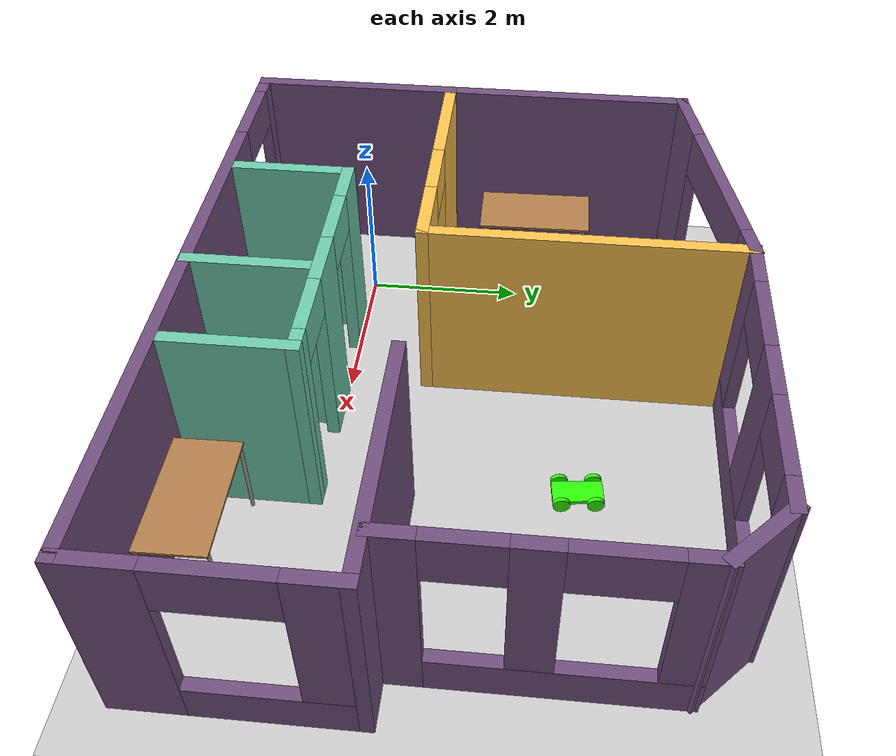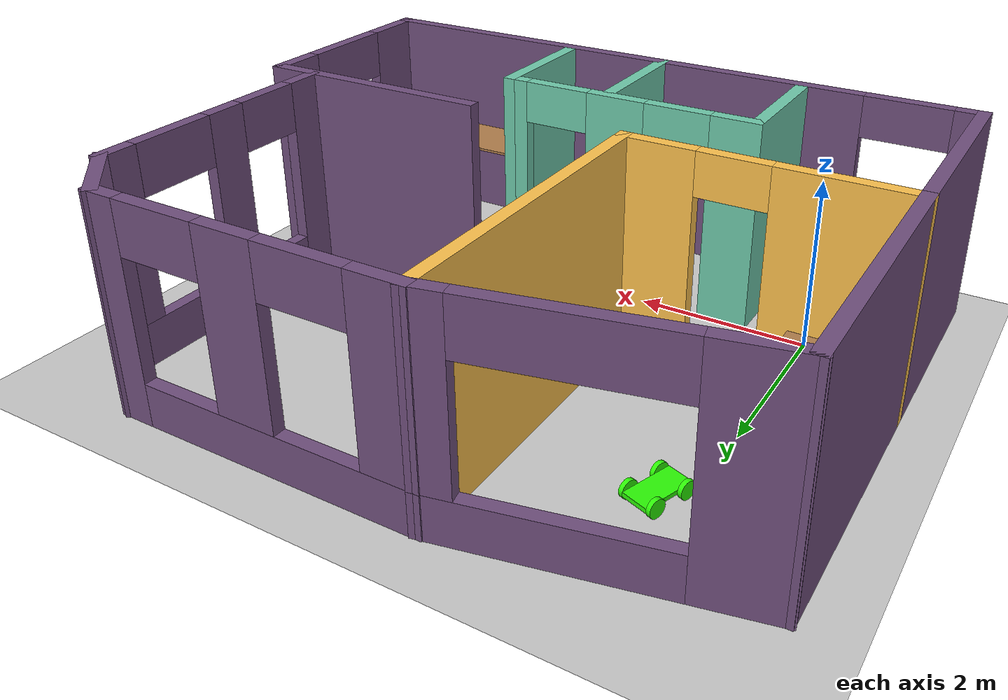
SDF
<sdf version="1.6">
 <world name="default">
  <plugin name="welcome" filename="libwelcome.so"/>
  <light name="sun" type="directional">
   <pose>0 0 10 0 -0 0</pose>
   <diffuse>0.8 0.8 0.8 1</diffuse>
   <specular>0.2 0.2 0.2 1</specular>
   <attenuation>
    <range>1000</range>
    <constant>0.9</constant>
    <linear>0.01</linear>
    <quadratic>0.001</quadratic>
   </attenuation>
   <direction>-0.5 0.1 -0.9</direction>
  </light>
  <model name="ground_plane">
   <static>1</static>
   <link name="link">
    <collision name="collision">
     <geometry><plane><normal>0 0 1</normal><size>100 100</size></plane></geometry>
     <surface>
      <contact><collide_bitmask>65535</collide_bitmask></contact>
      <friction><ode><mu>100</mu><mu2>50</mu2></ode></friction>
     </surface>
    </collision>
    <visual name="visual">
     <cast_shadows>0</cast_shadows>
     <geometry><plane><normal>0 0 1</normal><size>100 100</size></plane></geometry>
     <material>
      <script><uri>file://media/materials/scripts/gazebo.material</uri><name>Gazebo/Grey</name></script>
     </material>
    </visual>
   </link>
  </model>
  <gravity>0 0 -9.8</gravity>
  <magnetic_field>6e-06 2.3e-05 -4.2e-05</magnetic_field>
  <atmosphere type="adiabatic"/>
  <physics name="default_physics" default="0" type="ode">
   <max_step_size>0.001</max_step_size>
   <real_time_factor>1</real_time_factor>
   <real_time_update_rate>1000</real_time_update_rate>
  </physics>
  <scene><ambient>0.4 0.4 0.4 1</ambient><background>0.7 0.7 0.7 1</background><shadows>1</shadows></scene>
  <audio><device>default</device></audio>
  <spherical_coordinates>
   <surface_model>EARTH_WGS84</surface_model>
   <latitude_deg>0</latitude_deg>
   <longitude_deg>0</longitude_deg>
   <elevation>0</elevation>
   <heading_deg>0</heading_deg>
  </spherical_coordinates>
  <model name="apartment-35">
   <pose>2.67015 1.59203 0 0 -0 0</pose>
   <link name="Wall_0">
    <pose>0.006768 -3.16806 0 0 -0 0</pose>
    <visual name="Wall_0_Visual_0">
     <pose>-3.79978 0 1.25 0 -0 0</pose>
     <geometry><box><size>0.37543 0.15 2.5</size></box></geometry>
     <material>
      <script><uri>file://media/materials/scripts/gazebo.material</uri><name>Gazebo/Grey</name></script>
      <ambient>0.443137 0.313726 0.494118 1</ambient>
     </material>
     <meta><layer>0</layer></meta>
    </visual>
    <collision name="Wall_0_Collision_0">
     <geometry><box><size>0.37543 0.15 2.5</size></box></geometry>
     <pose>-3.79978 0 1.25 0 -0 0</pose>
    </collision>
    <visual name="Wall_0_Visual_1">
     <pose>0.687715 0 1.25 0 -0 0</pose>
     <geometry><box><size>6.59957 0.15 2.5</size></box></geometry>
     <material>
      <script><uri>file://media/materials/scripts/gazebo.material</uri><name>Gazebo/Grey</name></script>
      <ambient>0.443137 0.313726 0.494118 1</ambient>
     </material>
     <meta><layer>0</layer></meta>
    </visual>
    <collision name="Wall_0_Collision_1">
     <geometry><box><size>6.59957 0.15 2.5</size></box></geometry>
     <pose>0.687715 0 1.25 0 -0 0</pose>
    </collision>
    <visual name="Wall_0_Visual_2">
     <pose>-3.11207 0 2.25 0 -0 0</pose>
     <geometry><box><size>1 0.15 0.5</size></box></geometry>
     <material>
      <script><uri>file://media/materials/scripts/gazebo.material</uri><name>Gazebo/Grey</name></script>
      <ambient>0.443137 0.313726 0.494118 1</ambient>
     </material>
     <meta><layer>0</layer></meta>
    </visual>
    <collision name="Wall_0_Collision_2">
     <geometry><box><size>1 0.15 0.5</size></box></geometry>
     <pose>-3.11207 0 2.25 0 -0 0</pose>
    </collision>
   </link>
   <link name="Wall_10">
    <pose>0.994046 3.13706 0 0 -0 -3.14153</pose>
    <visual name="Wall_10_Visual_0">
     <pose>-1.66159 0 1.25 0 -0 0</pose>
     <geometry><box><size>0.426824 0.15 2.5</size></box></geometry>
     <material>
      <script><uri>file://media/materials/scripts/gazebo.material</uri><name>Gazebo/Grey</name></script>
      <ambient>0.443137 0.313726 0.494118 1</ambient>
     </material>
     <meta><layer>0</layer></meta>
    </visual>
    <collision name="Wall_10_Collision_0">
     <geometry><box><size>0.426824 0.15 2.5</size></box></geometry>
     <pose>-1.66159 0 1.25 0 -0 0</pose>
    </collision>
    <visual name="Wall_10_Visual_1">
     <pose>0.213412 0 0.25 0 -0 0</pose>
     <geometry><box><size>3.32318 0.15 0.5</size></box></geometry>
     <material>
      <script><uri>file://media/materials/scripts/gazebo.material</uri><name>Gazebo/Grey</name></script>
      <ambient>0.443137 0.313726 0.494118 1</ambient>
     </material>
     <meta><layer>0</layer></meta>
    </visual>
    <collision name="Wall_10_Collision_1">
     <geometry><box><size>3.32318 0.15 0.5</size></box></geometry>
     <pose>0.213412 0 0.25 0 -0 0</pose>
    </collision>
    <visual name="Wall_10_Visual_2">
     <pose>-0.103407 0 1.5 0 -0 0</pose>
     <geometry><box><size>0.689537 0.15 2</size></box></geometry>
     <material>
      <script><uri>file://media/materials/scripts/gazebo.material</uri><name>Gazebo/Grey</name></script>
      <ambient>0.443137 0.313726 0.494118 1</ambient>
     </material>
     <meta><layer>0</layer></meta>
    </visual>
    <collision name="Wall_10_Collision_2">
     <geometry><box><size>0.689537 0.15 2</size></box></geometry>
     <pose>-0.103407 0 1.5 0 -0 0</pose>
    </collision>
    <visual name="Wall_10_Visual_3">
     <pose>1.55818 0 1.5 0 -0 0</pose>
     <geometry><box><size>0.633638 0.15 2</size></box></geometry>
     <material>
      <script><uri>file://media/materials/scripts/gazebo.material</uri><name>Gazebo/Grey</name></script>
      <ambient>0.443137 0.313726 0.494118 1</ambient>
     </material>
     <meta><layer>0</layer></meta>
    </visual>
    <collision name="Wall_10_Collision_3">
     <geometry><box><size>0.633638 0.15 2</size></box></geometry>
     <pose>1.55818 0 1.5 0 -0 0</pose>
    </collision>
    <visual name="Wall_10_Visual_4">
     <pose>-0.948176 0 2.2 0 -0 0</pose>
     <geometry><box><size>1 0.15 0.6</size></box></geometry>
     <material>
      <script><uri>file://media/materials/scripts/gazebo.material</uri><name>Gazebo/Grey</name></script>
      <ambient>0.443137 0.313726 0.494118 1</ambient>
     </material>
     <meta><layer>0</layer></meta>
    </visual>
    <collision name="Wall_10_Collision_4">
     <geometry><box><size>1 0.15 0.6</size></box></geometry>
     <pose>-0.948176 0 2.2 0 -0 0</pose>
    </collision>
    <visual name="Wall_10_Visual_5">
     <pose>0.741362 0 2.2 0 -0 0</pose>
     <geometry><box><size>1 0.15 0.6</size></box></geometry>
     <material>
      <script><uri>file://media/materials/scripts/gazebo.material</uri><name>Gazebo/Grey</name></script>
      <ambient>0.443137 0.313726 0.494118 1</ambient>
     </material>
     <meta><layer>0</layer></meta>
    </visual>
    <collision name="Wall_10_Collision_5">
     <geometry><box><size>1 0.15 0.6</size></box></geometry>
     <pose>0.741362 0 2.2 0 -0 0</pose>
    </collision>
   </link>
   <link name="Wall_11">
    <collision name="Wall_11_Collision">
     <geometry><box><size>3.901 0.15 2.5</size></box></geometry>
     <pose>0 0 1.25 0 -0 0</pose>
    </collision>
    <visual name="Wall_11_Visual">
     <pose>0 0 1.25 0 -0 0</pose>
     <geometry><box><size>3.901 0.15 2.5</size></box></geometry>
     <material>
      <script><uri>file://media/materials/scripts/gazebo.material</uri><name>Gazebo/Grey</name></script>
      <ambient>1 0.764706 0.305882 1</ambient>
     </material>
     <meta><layer>0</layer></meta>
    </visual>
    <pose>-0.805732 1.26144 0 0 -0 -1.5708</pose>
   </link>
   <link name="Wall_13">
    <pose>-2.35573 -0.61406 0 0 -0 3.14159</pose>
    <visual name="Wall_13_Visual_0">
     <pose>-1.16875 0 1.25 0 -0 0</pose>
     <geometry><box><size>0.912507 0.15 2.5</size></box></geometry>
     <material>
      <script><uri>file://media/materials/scripts/gazebo.material</uri><name>Gazebo/Grey</name></script>
      <ambient>1 0.764706 0.305882 1</ambient>
     </material>
     <meta><layer>0</layer></meta>
    </visual>
    <collision name="Wall_13_Collision_0">
     <geometry><box><size>0.912507 0.15 2.5</size></box></geometry>
     <pose>-1.16875 0 1.25 0 -0 0</pose>
    </collision>
    <visual name="Wall_13_Visual_1">
     <pose>0.856253 0 1.25 0 -0 0</pose>
     <geometry><box><size>1.53749 0.15 2.5</size></box></geometry>
     <material>
      <script><uri>file://media/materials/scripts/gazebo.material</uri><name>Gazebo/Grey</name></script>
      <ambient>1 0.764706 0.305882 1</ambient>
     </material>
     <meta><layer>0</layer></meta>
    </visual>
    <collision name="Wall_13_Collision_1">
     <geometry><box><size>1.53749 0.15 2.5</size></box></geometry>
     <pose>0.856253 0 1.25 0 -0 0</pose>
    </collision>
    <visual name="Wall_13_Visual_2">
     <pose>-0.312493 0 2.25 0 -0 0</pose>
     <geometry><box><size>0.8 0.15 0.5</size></box></geometry>
     <material>
      <script><uri>file://media/materials/scripts/gazebo.material</uri><name>Gazebo/Grey</name></script>
      <ambient>1 0.764706 0.305882 1</ambient>
     </material>
     <meta><layer>0</layer></meta>
    </visual>
    <collision name="Wall_13_Collision_2">
     <geometry><box><size>0.8 0.15 0.5</size></box></geometry>
     <pose>-0.312493 0 2.25 0 -0 0</pose>
    </collision>
   </link>
   <link name="Wall_15">
    <collision name="Wall_15_Collision">
     <geometry><box><size>2.70438 0.15 2.5</size></box></geometry>
     <pose>0 0 1.25 0 -0 0</pose>
    </collision>
    <visual name="Wall_15_Visual">
     <pose>0 0 1.25 0 -0 0</pose>
     <geometry><box><size>2.70438 0.15 2.5</size></box></geometry>
     <material>
      <script><uri>file://media/materials/scripts/gazebo.material</uri><name>Gazebo/Grey</name></script>
      <ambient>0.443137 0.313726 0.494118 1</ambient>
     </material>
     <meta><layer>0</layer></meta>
    </visual>
    <pose>-3.90573 -1.89106 0 0 -0 -1.5708</pose>
   </link>
   <link name="Wall_17">
    <collision name="Wall_17_Collision">
     <geometry><box><size>3.25 0.15 2.5</size></box></geometry>
     <pose>0 0 1.25 0 -0 0</pose>
    </collision>
    <visual name="Wall_17_Visual">
     <pose>0 0 1.25 0 -0 0</pose>
     <geometry><box><size>3.25 0.15 2.5</size></box></geometry>
     <material>
      <script><uri>file://media/materials/scripts/gazebo.material</uri><name>Gazebo/Grey</name></script>
      <ambient>0.443137 0.313726 0.494118 1</ambient>
     </material>
     <meta><layer>0</layer></meta>
    </visual>
    <pose>-3.90573 0.93594 0 0 -0 1.5708</pose>
   </link>
   <link name="Wall_18">
    <pose>-2.35573 2.81144 0 0 -0 0.206992</pose>
    <visual name="Wall_18_Visual_0">
     <pose>-1.2169 0 1.25 0 -0 0</pose>
     <geometry><box><size>0.883821 0.15 2.5</size></box></geometry>
     <material>
      <script><uri>file://media/materials/scripts/gazebo.material</uri><name>Gazebo/Grey</name></script>
      <ambient>0.443137 0.313726 0.494118 1</ambient>
     </material>
     <meta><layer>0</layer></meta>
    </visual>
    <collision name="Wall_18_Collision_0">
     <geometry><box><size>0.883821 0.15 2.5</size></box></geometry>
     <pose>-1.2169 0 1.25 0 -0 0</pose>
    </collision>
    <visual name="Wall_18_Visual_1">
     <pose>0.441911 0 0.25 0 -0 0</pose>
     <geometry><box><size>2.4338 0.15 0.5</size></box></geometry>
     <material>
      <script><uri>file://media/materials/scripts/gazebo.material</uri><name>Gazebo/Grey</name></script>
      <ambient>0.443137 0.313726 0.494118 1</ambient>
     </material>
     <meta><layer>0</layer></meta>
    </visual>
    <collision name="Wall_18_Collision_1">
     <geometry><box><size>2.4338 0.15 0.5</size></box></geometry>
     <pose>0.441911 0 0.25 0 -0 0</pose>
    </collision>
    <visual name="Wall_18_Visual_2">
     <pose>1.44191 0 1.5 0 -0 0</pose>
     <geometry><box><size>0.433796 0.15 2</size></box></geometry>
     <material>
      <script><uri>file://media/materials/scripts/gazebo.material</uri><name>Gazebo/Grey</name></script>
      <ambient>0.443137 0.313726 0.494118 1</ambient>
     </material>
     <meta><layer>0</layer></meta>
    </visual>
    <collision name="Wall_18_Collision_2">
     <geometry><box><size>0.433796 0.15 2</size></box></geometry>
     <pose>1.44191 0 1.5 0 -0 0</pose>
    </collision>
    <visual name="Wall_18_Visual_3">
     <pose>0.225013 0 2.2 0 -0 0</pose>
     <geometry><box><size>2 0.15 0.6</size></box></geometry>
     <material>
      <script><uri>file://media/materials/scripts/gazebo.material</uri><name>Gazebo/Grey</name></script>
      <ambient>0.443137 0.313726 0.494118 1</ambient>
     </material>
     <meta><layer>0</layer></meta>
    </visual>
    <collision name="Wall_18_Collision_3">
     <geometry><box><size>2 0.15 0.6</size></box></geometry>
     <pose>0.225013 0 2.2 0 -0 0</pose>
    </collision>
   </link>
   <link name="Wall_20">
    <collision name="Wall_20_Collision">
     <geometry><box><size>1.5 0.15 2.5</size></box></geometry>
     <pose>0 0 1.25 0 -0 0</pose>
    </collision>
    <visual name="Wall_20_Visual">
     <pose>0 0 1.25 0 -0 0</pose>
     <geometry><box><size>1.5 0.15 2.5</size></box></geometry>
     <material>
      <script><uri>file://media/materials/scripts/gazebo.material</uri><name>Gazebo/Grey</name></script>
      <ambient>0.435294 0.796078 0.67451 1</ambient>
     </material>
     <meta><layer>0</layer></meta>
    </visual>
    <pose>1.21959 -2.34338 0 0 -0 -1.5708</pose>
   </link>
   <link name="Wall_22">
    <pose>-0.330406 -1.66838 0 0 -0 3.14159</pose>
    <visual name="Wall_22_Visual_0">
     <pose>-1.46347 0 1.25 0 -0 0</pose>
     <geometry><box><size>0.323069 0.15 2.5</size></box></geometry>
     <material>
      <script><uri>file://media/materials/scripts/gazebo.material</uri><name>Gazebo/Grey</name></script>
      <ambient>0.435294 0.796078 0.67451 1</ambient>
     </material>
     <meta><layer>0</layer></meta>
    </visual>
    <collision name="Wall_22_Collision_0">
     <geometry><box><size>0.323069 0.15 2.5</size></box></geometry>
     <pose>-1.46347 0 1.25 0 -0 0</pose>
    </collision>
    <visual name="Wall_22_Visual_1">
     <pose>-0.137615 0 1.25 0 -0 0</pose>
     <geometry><box><size>0.728631 0.15 2.5</size></box></geometry>
     <material>
      <script><uri>file://media/materials/scripts/gazebo.material</uri><name>Gazebo/Grey</name></script>
      <ambient>0.435294 0.796078 0.67451 1</ambient>
     </material>
     <meta><layer>0</layer></meta>
    </visual>
    <collision name="Wall_22_Collision_1">
     <geometry><box><size>0.728631 0.15 2.5</size></box></geometry>
     <pose>-0.137615 0 1.25 0 -0 0</pose>
    </collision>
    <visual name="Wall_22_Visual_2">
     <pose>1.32585 0 1.25 0 -0 0</pose>
     <geometry><box><size>0.5983 0.15 2.5</size></box></geometry>
     <material>
      <script><uri>file://media/materials/scripts/gazebo.material</uri><name>Gazebo/Grey</name></script>
      <ambient>0.435294 0.796078 0.67451 1</ambient>
     </material>
     <meta><layer>0</layer></meta>
    </visual>
    <collision name="Wall_22_Collision_2">
     <geometry><box><size>0.5983 0.15 2.5</size></box></geometry>
     <pose>1.32585 0 1.25 0 -0 0</pose>
    </collision>
    <visual name="Wall_22_Visual_3">
     <pose>-0.901931 0 2.25 0 -0 0</pose>
     <geometry><box><size>0.8 0.15 0.5</size></box></geometry>
     <material>
      <script><uri>file://media/materials/scripts/gazebo.material</uri><name>Gazebo/Grey</name></script>
      <ambient>0.435294 0.796078 0.67451 1</ambient>
     </material>
     <meta><layer>0</layer></meta>
    </visual>
    <collision name="Wall_22_Collision_3">
     <geometry><box><size>0.8 0.15 0.5</size></box></geometry>
     <pose>-0.901931 0 2.25 0 -0 0</pose>
    </collision>
    <visual name="Wall_22_Visual_4">
     <pose>0.6267 0 2.25 0 -0 0</pose>
     <geometry><box><size>0.8 0.15 0.5</size></box></geometry>
     <material>
      <script><uri>file://media/materials/scripts/gazebo.material</uri><name>Gazebo/Grey</name></script>
      <ambient>0.435294 0.796078 0.67451 1</ambient>
     </material>
     <meta><layer>0</layer></meta>
    </visual>
    <collision name="Wall_22_Collision_4">
     <geometry><box><size>0.8 0.15 0.5</size></box></geometry>
     <pose>0.6267 0 2.25 0 -0 0</pose>
    </collision>
   </link>
   <link name="Wall_23">
    <collision name="Wall_23_Collision">
     <geometry><box><size>1.5 0.15 2.5</size></box></geometry>
     <pose>0 0 1.25 0 -0 0</pose>
    </collision>
    <visual name="Wall_23_Visual">
     <pose>0 0 1.25 0 -0 0</pose>
     <geometry><box><size>1.5 0.15 2.5</size></box></geometry>
     <material>
      <script><uri>file://media/materials/scripts/gazebo.material</uri><name>Gazebo/Grey</name></script>
      <ambient>0.435294 0.796078 0.67451 1</ambient>
     </material>
     <meta><layer>0</layer></meta>
    </visual>
    <pose>-1.88041 -2.34338 0 0 -0 -1.5708</pose>
   </link>
   <link name="Wall_27">
    <collision name="Wall_27_Collision">
     <geometry><box><size>1.5 0.15 2.5</size></box></geometry>
     <pose>0 0 1.25 0 -0 0</pose>
    </collision>
    <visual name="Wall_27_Visual">
     <pose>0 0 1.25 0 -0 0</pose>
     <geometry><box><size>1.5 0.15 2.5</size></box></geometry>
     <material>
      <script><uri>file://media/materials/scripts/gazebo.material</uri><name>Gazebo/Grey</name></script>
      <ambient>0.435294 0.796078 0.67451 1</ambient>
     </material>
     <meta><layer>0</layer></meta>
    </visual>
    <pose>-0.051995 -2.47975 0 0 -0 1.5708</pose>
   </link>
   <link name="Wall_3">
    <pose>3.91927 -1.89106 0 0 -0 1.5708</pose>
    <visual name="Wall_3_Visual_0">
     <pose>-0.932156 0 1.25 0 -0 0</pose>
     <geometry><box><size>0.839473 0.15 2.5</size></box></geometry>
     <material>
      <script><uri>file://media/materials/scripts/gazebo.material</uri><name>Gazebo/Grey</name></script>
      <ambient>0.443137 0.313726 0.494118 1</ambient>
     </material>
     <meta><layer>0</layer></meta>
    </visual>
    <collision name="Wall_3_Collision_0">
     <geometry><box><size>0.839473 0.15 2.5</size></box></geometry>
     <pose>-0.932156 0 1.25 0 -0 0</pose>
    </collision>
    <visual name="Wall_3_Visual_1">
     <pose>0.419736 0 0.25 0 -0 0</pose>
     <geometry><box><size>1.86431 0.15 0.5</size></box></geometry>
     <material>
      <script><uri>file://media/materials/scripts/gazebo.material</uri><name>Gazebo/Grey</name></script>
      <ambient>0.443137 0.313726 0.494118 1</ambient>
     </material>
     <meta><layer>0</layer></meta>
    </visual>
    <collision name="Wall_3_Collision_1">
     <geometry><box><size>1.86431 0.15 0.5</size></box></geometry>
     <pose>0.419736 0 0.25 0 -0 0</pose>
    </collision>
    <visual name="Wall_3_Visual_2">
     <pose>1.01974 0 1.5 0 -0 0</pose>
     <geometry><box><size>0.664312 0.15 2</size></box></geometry>
     <material>
      <script><uri>file://media/materials/scripts/gazebo.material</uri><name>Gazebo/Grey</name></script>
      <ambient>0.443137 0.313726 0.494118 1</ambient>
     </material>
     <meta><layer>0</layer></meta>
    </visual>
    <collision name="Wall_3_Collision_2">
     <geometry><box><size>0.664312 0.15 2</size></box></geometry>
     <pose>1.01974 0 1.5 0 -0 0</pose>
    </collision>
    <visual name="Wall_3_Visual_3">
     <pose>0.087581 0 2.2 0 -0 0</pose>
     <geometry><box><size>1.2 0.15 0.6</size></box></geometry>
     <material>
      <script><uri>file://media/materials/scripts/gazebo.material</uri><name>Gazebo/Grey</name></script>
      <ambient>0.443137 0.313726 0.494118 1</ambient>
     </material>
     <meta><layer>0</layer></meta>
    </visual>
    <collision name="Wall_3_Collision_3">
     <geometry><box><size>1.2 0.15 0.6</size></box></geometry>
     <pose>0.087581 0 2.2 0 -0 0</pose>
    </collision>
   </link>
   <link name="Wall_4">
    <collision name="Wall_4_Collision">
     <geometry><box><size>2.93855 0.15 2.5</size></box></geometry>
     <pose>0 0 1.25 0 -0 0</pose>
    </collision>
    <visual name="Wall_4_Visual">
     <pose>0 0 1.25 0 -0 0</pose>
     <geometry><box><size>2.93855 0.15 2.5</size></box></geometry>
     <material>
      <script><uri>file://media/materials/scripts/gazebo.material</uri><name>Gazebo/Grey</name></script>
      <ambient>0.443137 0.313726 0.494118 1</ambient>
     </material>
     <meta><layer>0</layer></meta>
    </visual>
    <pose>2.52527 -0.61406 0 0 -0 3.14159</pose>
   </link>
   <link name="Wall_7">
    <pose>3.39486 0.986143 0 0 -0 1.5708</pose>
    <visual name="Wall_7_Visual_0">
     <pose>-1.37146 0 1.25 0 -0 0</pose>
     <geometry><box><size>0.507076 0.15 2.5</size></box></geometry>
     <material>
      <script><uri>file://media/materials/scripts/gazebo.material</uri><name>Gazebo/Grey</name></script>
      <ambient>0.443137 0.313726 0.494118 1</ambient>
     </material>
     <meta><layer>0</layer></meta>
    </visual>
    <collision name="Wall_7_Collision_0">
     <geometry><box><size>0.507076 0.15 2.5</size></box></geometry>
     <pose>-1.37146 0 1.25 0 -0 0</pose>
    </collision>
    <visual name="Wall_7_Visual_1">
     <pose>0.253538 0 0.25 0 -0 0</pose>
     <geometry><box><size>2.74292 0.15 0.5</size></box></geometry>
     <material>
      <script><uri>file://media/materials/scripts/gazebo.material</uri><name>Gazebo/Grey</name></script>
      <ambient>0.443137 0.313726 0.494118 1</ambient>
     </material>
     <meta><layer>0</layer></meta>
    </visual>
    <collision name="Wall_7_Collision_1">
     <geometry><box><size>2.74292 0.15 0.5</size></box></geometry>
     <pose>0.253538 0 0.25 0 -0 0</pose>
    </collision>
    <visual name="Wall_7_Visual_2">
     <pose>-0.074006 0 1.5 0 -0 0</pose>
     <geometry><box><size>0.487836 0.15 2</size></box></geometry>
     <material>
      <script><uri>file://media/materials/scripts/gazebo.material</uri><name>Gazebo/Grey</name></script>
      <ambient>0.443137 0.313726 0.494118 1</ambient>
     </material>
     <meta><layer>0</layer></meta>
    </visual>
    <collision name="Wall_7_Collision_2">
     <geometry><box><size>0.487836 0.15 2</size></box></geometry>
     <pose>-0.074006 0 1.5 0 -0 0</pose>
    </collision>
    <visual name="Wall_7_Visual_3">
     <pose>1.39746 0 1.5 0 -0 0</pose>
     <geometry><box><size>0.455088 0.15 2</size></box></geometry>
     <material>
      <script><uri>file://media/materials/scripts/gazebo.material</uri><name>Gazebo/Grey</name></script>
      <ambient>0.443137 0.313726 0.494118 1</ambient>
     </material>
     <meta><layer>0</layer></meta>
    </visual>
    <collision name="Wall_7_Collision_3">
     <geometry><box><size>0.455088 0.15 2</size></box></geometry>
     <pose>1.39746 0 1.5 0 -0 0</pose>
    </collision>
    <visual name="Wall_7_Visual_4">
     <pose>-0.717924 0 2.2 0 -0 0</pose>
     <geometry><box><size>0.8 0.15 0.6</size></box></geometry>
     <material>
      <script><uri>file://media/materials/scripts/gazebo.material</uri><name>Gazebo/Grey</name></script>
      <ambient>0.443137 0.313726 0.494118 1</ambient>
     </material>
     <meta><layer>0</layer></meta>
    </visual>
    <collision name="Wall_7_Collision_4">
     <geometry><box><size>0.8 0.15 0.6</size></box></geometry>
     <pose>-0.717924 0 2.2 0 -0 0</pose>
    </collision>
    <visual name="Wall_7_Visual_5">
     <pose>0.669912 0 2.2 0 -0 0</pose>
     <geometry><box><size>1 0.15 0.6</size></box></geometry>
     <material>
      <script><uri>file://media/materials/scripts/gazebo.material</uri><name>Gazebo/Grey</name></script>
      <ambient>0.443137 0.313726 0.494118 1</ambient>
     </material>
     <meta><layer>0</layer></meta>
    </visual>
    <collision name="Wall_7_Collision_5">
     <geometry><box><size>1 0.15 0.6</size></box></geometry>
     <pose>0.669912 0 2.2 0 -0 0</pose>
    </collision>
   </link>
   <link name="Wall_8">
    <collision name="Wall_8_Collision">
     <geometry><box><size>1 0.15 2.5</size></box></geometry>
     <pose>0 0 1.25 0 -0 0</pose>
    </collision>
    <visual name="Wall_8_Visual">
     <pose>0 0 1.25 0 -0 0</pose>
     <geometry><box><size>1 0.15 2.5</size></box></geometry>
     <material>
      <script><uri>file://media/materials/scripts/gazebo.material</uri><name>Gazebo/Grey</name></script>
      <ambient>0.443137 0.313726 0.494118 1</ambient>
     </material>
     <meta><layer>0</layer></meta>
    </visual>
    <pose>3.09434 2.83666 0 0 -0 2.35619</pose>
   </link>
   <static>1</static>
  </model>
  <model name="table">
   <static>1</static>
   <link name="link">
    <collision name="surface">
     <pose>0 0 1 0 -0 0</pose>
     <geometry><box><size>1.5 0.8 0.03</size></box></geometry>
     <surface><friction><ode><mu>0.6</mu><mu2>0.6</mu2></ode></friction></surface>
    </collision>
    <visual name="visual1">
     <pose>0 0 1 0 -0 0</pose>
     <geometry><box><size>1.5 0.8 0.03</size></box></geometry>
     <material>
      <script><uri>file://media/materials/scripts/gazebo.material</uri><name>Gazebo/Wood</name></script>
     </material>
    </visual>
    <collision name="front_left_leg">
     <pose>0.68 0.38 0.5 0 -0 0</pose>
     <geometry><cylinder><radius>0.02</radius><length>1</length></cylinder></geometry>
    </collision>
    <visual name="front_left_leg">
     <pose>0.68 0.38 0.5 0 -0 0</pose>
     <geometry><cylinder><radius>0.02</radius><length>1</length></cylinder></geometry>
     <material>
      <script><uri>file://media/materials/scripts/gazebo.material</uri><name>Gazebo/Grey</name></script>
     </material>
    </visual>
    <collision name="front_right_leg">
     <pose>0.68 -0.38 0.5 0 -0 0</pose>
     <geometry><cylinder><radius>0.02</radius><length>1</length></cylinder></geometry>
    </collision>
    <visual name="front_right_leg">
     <pose>0.68 -0.38 0.5 0 -0 0</pose>
     <geometry><cylinder><radius>0.02</radius><length>1</length></cylinder></geometry>
     <material>
      <script><uri>file://media/materials/scripts/gazebo.material</uri><name>Gazebo/Grey</name></script>
     </material>
    </visual>
    <collision name="back_right_leg">
     <pose>-0.68 -0.38 0.5 0 -0 0</pose>
     <geometry><cylinder><radius>0.02</radius><length>1</length></cylinder></geometry>
    </collision>
    <visual name="back_right_leg">
     <pose>-0.68 -0.38 0.5 0 -0 0</pose>
     <geometry><cylinder><radius>0.02</radius><length>1</length></cylinder></geometry>
     <material>
      <script><uri>file://media/materials/scripts/gazebo.material</uri><name>Gazebo/Grey</name></script>
     </material>
    </visual>
    <collision name="back_left_leg">
     <pose>-0.68 0.38 0.5 0 -0 0</pose>
     <geometry><cylinder><radius>0.02</radius><length>1</length></cylinder></geometry>
    </collision>
    <visual name="back_left_leg">
     <pose>-0.68 0.38 0.5 0 -0 0</pose>
     <geometry><cylinder><radius>0.02</radius><length>1</length></cylinder></geometry>
     <material>
      <script><uri>file://media/materials/scripts/gazebo.material</uri><name>Gazebo/Grey</name></script>
     </material>
    </visual>
   </link>
   <pose>4.86246 -1.11866 0.175263 0 -0 0.012836</pose>
  </model>
  <model name="table_0">
   <static>1</static>
   <link name="link">
    <collision name="surface">
     <pose>0 0 1 0 -0 0</pose>
     <geometry><box><size>1.5 0.8 0.03</size></box></geometry>
     <surface><friction><ode><mu>0.6</mu><mu2>0.6</mu2></ode></friction></surface>
    </collision>
    <visual name="visual1">
     <pose>0 0 1 0 -0 0</pose>
     <geometry><box><size>1.5 0.8 0.03</size></box></geometry>
     <material>
      <script><uri>file://media/materials/scripts/gazebo.material</uri><name>Gazebo/Wood</name></script>
     </material>
    </visual>
    <collision name="front_left_leg">
     <pose>0.68 0.38 0.5 0 -0 0</pose>
     <geometry><cylinder><radius>0.02</radius><length>1</length></cylinder></geometry>
    </collision>
    <visual name="front_left_leg">
     <pose>0.68 0.38 0.5 0 -0 0</pose>
     <geometry><cylinder><radius>0.02</radius><length>1</length></cylinder></geometry>
     <material>
      <script><uri>file://media/materials/scripts/gazebo.material</uri><name>Gazebo/Grey</name></script>
     </material>
    </visual>
    <collision name="front_right_leg">
     <pose>0.68 -0.38 0.5 0 -0 0</pose>
     <geometry><cylinder><radius>0.02</radius><length>1</length></cylinder></geometry>
    </collision>
    <visual name="front_right_leg">
     <pose>0.68 -0.38 0.5 0 -0 0</pose>
     <geometry><cylinder><radius>0.02</radius><length>1</length></cylinder></geometry>
     <material>
      <script><uri>file://media/materials/scripts/gazebo.material</uri><name>Gazebo/Grey</name></script>
     </material>
    </visual>
    <collision name="back_right_leg">
     <pose>-0.68 -0.38 0.5 0 -0 0</pose>
     <geometry><cylinder><radius>0.02</radius><length>1</length></cylinder></geometry>
    </collision>
    <visual name="back_right_leg">
     <pose>-0.68 -0.38 0.5 0 -0 0</pose>
     <geometry><cylinder><radius>0.02</radius><length>1</length></cylinder></geometry>
     <material>
      <script><uri>file://media/materials/scripts/gazebo.material</uri><name>Gazebo/Grey</name></script>
     </material>
    </visual>
    <collision name="back_left_leg">
     <pose>-0.68 0.38 0.5 0 -0 0</pose>
     <geometry><cylinder><radius>0.02</radius><length>1</length></cylinder></geometry>
    </collision>
    <visual name="back_left_leg">
     <pose>-0.68 0.38 0.5 0 -0 0</pose>
     <geometry><cylinder><radius>0.02</radius><length>1</length></cylinder></geometry>
     <material>
      <script><uri>file://media/materials/scripts/gazebo.material</uri><name>Gazebo/Grey</name></script>
     </material>
    </visual>
   </link>
   <pose>-0.628702 2.21474 0 0 -0 1.58671</pose>
  </model>
  <model name="car">
   <link name="link_2">
    <inertial>
     <mass>1</mass>
     <inertia>
      <ixx>0.166667</ixx>
      <ixy>0</ixy>
      <ixz>0</ixz>
      <iyy>0.166667</iyy>
      <iyz>0</iyz>
      <izz>0.166667</izz>
     </inertia>
    </inertial>
    <pose>-0 -2e-06 -0 0 -0 0</pose>
    <visual name="visual">
     <geometry><box><size>0.3 0.6 0.05</size></box></geometry>
     <material>
      <lighting>1</lighting>
      <script><uri>file://media/materials/scripts/gazebo.material</uri><name>Gazebo/Grey</name></script>
      <shader type="pixel"><normal_map>__default__</normal_map></shader>
      <ambient>0.179 1 0.024 1</ambient>
      <diffuse>0.7 0.7 0.7 1</diffuse>
      <specular>0.01 0.01 0.01 1</specular>
      <emissive>0 0 0 1</emissive>
     </material>
    </visual>
    <collision name="collision">
     <geometry><box><size>0.3 0.6 0.05</size></box></geometry>
     <surface>
      <friction>
       <ode><mu>1</mu><mu2>1</mu2><fdir1>0 0 0</fdir1><slip1>0</slip1><slip2>0</slip2></ode>
       <torsional>
        <coefficient>1</coefficient>
        <patch_radius>0</patch_radius>
        <surface_radius>0</surface_radius>
        <use_patch_radius>1</use_patch_radius>
        <ode><slip>0</slip></ode>
       </torsional>
      </friction>
      <bounce><restitution_coefficient>0</restitution_coefficient><threshold>1e+06</threshold></bounce>
      <contact>
       <collide_without_contact>0</collide_without_contact>
       <collide_without_contact_bitmask>1</collide_without_contact_bitmask>
       <collide_bitmask>1</collide_bitmask>
       <ode>
        <soft_cfm>0</soft_cfm>
        <soft_erp>0.2</soft_erp>
        <kp>1e+13</kp>
        <kd>1</kd>
        <max_vel>0.01</max_vel>
        <min_depth>0</min_depth>
       </ode>
       <bullet>
        <split_impulse>1</split_impulse>
        <split_impulse_penetration_threshold>-0.01</split_impulse_penetration_threshold>
        <soft_cfm>0</soft_cfm>
        <soft_erp>0.2</soft_erp>
        <kp>1e+13</kp>
        <kd>1</kd>
       </bullet>
      </contact>
     </surface>
    </collision>
   </link>
   <link name="link_3">
    <inertial>
     <mass>1</mass>
     <inertia><ixx>0.145833</ixx><ixy>0</ixy><ixz>0</ixz><iyy>0.145833</iyy><iyz>0</iyz><izz>0.125</izz></inertia>
    </inertial>
    <pose>0.175023 -0.199988 0 1.5707 0 1.5707</pose>
    <visual name="visual">
     <geometry><cylinder><radius>0.1</radius><length>0.05</length></cylinder></geometry>
     <material>
      <lighting>1</lighting>
      <script><uri>file://media/materials/scripts/gazebo.material</uri><name>Gazebo/Grey</name></script>
      <shader type="pixel"><normal_map>__default__</normal_map></shader>
      <ambient>0.179 1 0.024 1</ambient>
      <diffuse>0.7 0.7 0.7 1</diffuse>
      <specular>0.01 0.01 0.01 1</specular>
      <emissive>0 0 0 1</emissive>
     </material>
    </visual>
    <collision name="collision">
     <geometry><cylinder><radius>0.1</radius><length>0.05</length></cylinder></geometry>
     <surface>
      <friction>
       <ode><mu>1</mu><mu2>1</mu2><fdir1>0 0 0</fdir1><slip1>0</slip1><slip2>0</slip2></ode>
       <torsional>
        <coefficient>1</coefficient>
        <patch_radius>0</patch_radius>
        <surface_radius>0</surface_radius>
        <use_patch_radius>1</use_patch_radius>
        <ode><slip>0</slip></ode>
       </torsional>
      </friction>
      <bounce><restitution_coefficient>0</restitution_coefficient><threshold>1e+06</threshold></bounce>
      <contact>
       <collide_without_contact>0</collide_without_contact>
       <collide_without_contact_bitmask>1</collide_without_contact_bitmask>
       <collide_bitmask>1</collide_bitmask>
       <ode>
        <soft_cfm>0</soft_cfm>
        <soft_erp>0.2</soft_erp>
        <kp>1e+13</kp>
        <kd>1</kd>
        <max_vel>0.01</max_vel>
        <min_depth>0</min_depth>
       </ode>
       <bullet>
        <split_impulse>1</split_impulse>
        <split_impulse_penetration_threshold>-0.01</split_impulse_penetration_threshold>
        <soft_cfm>0</soft_cfm>
        <soft_erp>0.2</soft_erp>
        <kp>1e+13</kp>
        <kd>1</kd>
       </bullet>
      </contact>
     </surface>
    </collision>
   </link>
   <link name="link_3_clone">
    <inertial>
     <mass>1</mass>
     <inertia><ixx>0.145833</ixx><ixy>0</ixy><ixz>0</ixz><iyy>0.145833</iyy><iyz>0</iyz><izz>0.125</izz></inertia>
    </inertial>
    <pose>0.17502 0.199998 0 1.5707 0 1.5707</pose>
    <visual name="visual">
     <geometry><cylinder><radius>0.1</radius><length>0.05</length></cylinder></geometry>
     <material>
      <lighting>1</lighting>
      <script><uri>file://media/materials/scripts/gazebo.material</uri><name>Gazebo/Grey</name></script>
      <shader type="pixel"><normal_map>__default__</normal_map></shader>
      <ambient>0.179 1 0.024 1</ambient>
      <diffuse>0.7 0.7 0.7 1</diffuse>
      <specular>0.01 0.01 0.01 1</specular>
      <emissive>0 0 0 1</emissive>
     </material>
    </visual>
    <collision name="collision">
     <geometry><cylinder><radius>0.1</radius><length>0.05</length></cylinder></geometry>
     <surface>
      <friction>
       <ode><mu>1</mu><mu2>1</mu2><fdir1>0 0 0</fdir1><slip1>0</slip1><slip2>0</slip2></ode>
       <torsional>
        <coefficient>1</coefficient>
        <patch_radius>0</patch_radius>
        <surface_radius>0</surface_radius>
        <use_patch_radius>1</use_patch_radius>
        <ode><slip>0</slip></ode>
       </torsional>
      </friction>
      <bounce><restitution_coefficient>0</restitution_coefficient><threshold>1e+06</threshold></bounce>
      <contact>
       <collide_without_contact>0</collide_without_contact>
       <collide_without_contact_bitmask>1</collide_without_contact_bitmask>
       <collide_bitmask>1</collide_bitmask>
       <ode>
        <soft_cfm>0</soft_cfm>
        <soft_erp>0.2</soft_erp>
        <kp>1e+13</kp>
        <kd>1</kd>
        <max_vel>0.01</max_vel>
        <min_depth>0</min_depth>
       </ode>
       <bullet>
        <split_impulse>1</split_impulse>
        <split_impulse_penetration_threshold>-0.01</split_impulse_penetration_threshold>
        <soft_cfm>0</soft_cfm>
        <soft_erp>0.2</soft_erp>
        <kp>1e+13</kp>
        <kd>1</kd>
       </bullet>
      </contact>
     </surface>
    </collision>
   </link>
   <link name="link_3_clone_0">
    <inertial>
     <mass>1</mass>
     <inertia><ixx>0.145833</ixx><ixy>0</ixy><ixz>0</ixz><iyy>0.145833</iyy><iyz>0</iyz><izz>0.125</izz></inertia>
    </inertial>
    <pose>-0.175019 -0.199999 -0 1.5707 0 1.5707</pose>
    <visual name="visual">
     <geometry><cylinder><radius>0.1</radius><length>0.05</length></cylinder></geometry>
     <material>
      <lighting>1</lighting>
      <script><uri>file://media/materials/scripts/gazebo.material</uri><name>Gazebo/Grey</name></script>
      <shader type="pixel"><normal_map>__default__</normal_map></shader>
      <ambient>0.179 1 0.024 1</ambient>
      <diffuse>0.7 0.7 0.7 1</diffuse>
      <specular>0.01 0.01 0.01 1</specular>
      <emissive>0 0 0 1</emissive>
     </material>
    </visual>
    <collision name="collision">
     <geometry><cylinder><radius>0.1</radius><length>0.05</length></cylinder></geometry>
     <surface>
      <friction>
       <ode><mu>1</mu><mu2>1</mu2><fdir1>0 0 0</fdir1><slip1>0</slip1><slip2>0</slip2></ode>
       <torsional>
        <coefficient>1</coefficient>
        <patch_radius>0</patch_radius>
        <surface_radius>0</surface_radius>
        <use_patch_radius>1</use_patch_radius>
        <ode><slip>0</slip></ode>
       </torsional>
      </friction>
      <bounce><restitution_coefficient>0</restitution_coefficient><threshold>1e+06</threshold></bounce>
      <contact>
       <collide_without_contact>0</collide_without_contact>
       <collide_without_contact_bitmask>1</collide_without_contact_bitmask>
       <collide_bitmask>1</collide_bitmask>
       <ode>
        <soft_cfm>0</soft_cfm>
        <soft_erp>0.2</soft_erp>
        <kp>1e+13</kp>
        <kd>1</kd>
        <max_vel>0.01</max_vel>
        <min_depth>0</min_depth>
       </ode>
       <bullet>
        <split_impulse>1</split_impulse>
        <split_impulse_penetration_threshold>-0.01</split_impulse_penetration_threshold>
        <soft_cfm>0</soft_cfm>
        <soft_erp>0.2</soft_erp>
        <kp>1e+13</kp>
        <kd>1</kd>
       </bullet>
      </contact>
     </surface>
    </collision>
   </link>
   <link name="link_3_clone_clone">
    <inertial>
     <mass>1</mass>
     <inertia><ixx>0.145833</ixx><ixy>0</ixy><ixz>0</ixz><iyy>0.145833</iyy><iyz>0</iyz><izz>0.125</izz></inertia>
    </inertial>
    <pose>-0.17502 0.199996 -0 1.5707 0 1.5707</pose>
    <visual name="visual">
     <geometry><cylinder><radius>0.1</radius><length>0.05</length></cylinder></geometry>
     <material>
      <lighting>1</lighting>
      <script><uri>file://media/materials/scripts/gazebo.material</uri><name>Gazebo/Grey</name></script>
      <shader type="pixel"><normal_map>__default__</normal_map></shader>
      <ambient>0.179 1 0.024 1</ambient>
      <diffuse>0.7 0.7 0.7 1</diffuse>
      <specular>0.01 0.01 0.01 1</specular>
      <emissive>0 0 0 1</emissive>
     </material>
    </visual>
    <collision name="collision">
     <geometry><cylinder><radius>0.1</radius><length>0.05</length></cylinder></geometry>
     <surface>
      <friction>
       <ode><mu>1</mu><mu2>1</mu2><fdir1>0 0 0</fdir1><slip1>0</slip1><slip2>0</slip2></ode>
       <torsional>
        <coefficient>1</coefficient>
        <patch_radius>0</patch_radius>
        <surface_radius>0</surface_radius>
        <use_patch_radius>1</use_patch_radius>
        <ode><slip>0</slip></ode>
       </torsional>
      </friction>
      <bounce><restitution_coefficient>0</restitution_coefficient><threshold>1e+06</threshold></bounce>
      <contact>
       <collide_without_contact>0</collide_without_contact>
       <collide_without_contact_bitmask>1</collide_without_contact_bitmask>
       <collide_bitmask>1</collide_bitmask>
       <ode>
        <soft_cfm>0</soft_cfm>
        <soft_erp>0.2</soft_erp>
        <kp>1e+13</kp>
        <kd>1</kd>
        <max_vel>0.01</max_vel>
        <min_depth>0</min_depth>
       </ode>
       <bullet>
        <split_impulse>1</split_impulse>
        <split_impulse_penetration_threshold>-0.01</split_impulse_penetration_threshold>
        <soft_cfm>0</soft_cfm>
        <soft_erp>0.2</soft_erp>
        <kp>1e+13</kp>
        <kd>1</kd>
       </bullet>
      </contact>
     </surface>
    </collision>
   </link>
   <joint name="link_2_JOINT_1" type="revolute">
    <parent>link_2</parent>
    <child>link_3_clone</child>
    <axis>
     <xyz>0 0 1</xyz>
     <use_parent_model_frame>0</use_parent_model_frame>
     <limit>
      <lower>-1.79769e+308</lower>
      <upper>1.79769e+308</upper>
      <effort>-1</effort>
      <velocity>-1</velocity>
     </limit>
     <dynamics>
      <spring_reference>0</spring_reference>
      <spring_stiffness>0</spring_stiffness>
      <damping>0</damping>
      <friction>0</friction>
     </dynamics>
    </axis>
    <physics>
     <ode><limit><cfm>0</cfm><erp>0.2</erp></limit><suspension><cfm>0</cfm><erp>0.2</erp></suspension></ode>
    </physics>
   </joint>
   <joint name="link_2_JOINT_2" type="revolute">
    <parent>link_2</parent>
    <child>link_3_clone_clone</child>
    <axis>
     <xyz>1 0 0</xyz>
     <use_parent_model_frame>0</use_parent_model_frame>
     <limit>
      <lower>-1.79769e+308</lower>
      <upper>1.79769e+308</upper>
      <effort>-1</effort>
      <velocity>-1</velocity>
     </limit>
     <dynamics>
      <spring_reference>0</spring_reference>
      <spring_stiffness>0</spring_stiffness>
      <damping>0</damping>
      <friction>0</friction>
     </dynamics>
    </axis>
    <physics>
     <ode><limit><cfm>0</cfm><erp>0.2</erp></limit><suspension><cfm>0</cfm><erp>0.2</erp></suspension></ode>
    </physics>
   </joint>
   <joint name="link_2_JOINT_4" type="revolute">
    <parent>link_2</parent>
    <child>link_3</child>
    <axis>
     <xyz>0 0 1</xyz>
     <use_parent_model_frame>0</use_parent_model_frame>
     <limit>
      <lower>-1.79769e+308</lower>
      <upper>1.79769e+308</upper>
      <effort>-1</effort>
      <velocity>-1</velocity>
     </limit>
     <dynamics>
      <spring_reference>0</spring_reference>
      <spring_stiffness>0</spring_stiffness>
      <damping>0</damping>
      <friction>0</friction>
     </dynamics>
    </axis>
    <physics>
     <ode><limit><cfm>0</cfm><erp>0.2</erp></limit><suspension><cfm>0</cfm><erp>0.2</erp></suspension></ode>
    </physics>
   </joint>
   <joint name="link_2_JOINT_5" type="revolute">
    <parent>link_2</parent>
    <child>link_3_clone_0</child>
    <axis>
     <xyz>0 0 1</xyz>
     <use_parent_model_frame>0</use_parent_model_frame>
     <limit>
      <lower>-1.79769e+308</lower>
      <upper>1.79769e+308</upper>
      <effort>-1</effort>
      <velocity>-1</velocity>
     </limit>
     <dynamics>
      <spring_reference>0</spring_reference>
      <spring_stiffness>0</spring_stiffness>
      <damping>0</damping>
      <friction>0</friction>
     </dynamics>
    </axis>
    <physics>
     <ode><limit><cfm>0</cfm><erp>0.2</erp></limit><suspension><cfm>0</cfm><erp>0.2</erp></suspension></ode>
    </physics>
   </joint>
   <static>0</static>
   <pose>3.57834 2.95429 0.100001 -5e-06 -0 0.111007</pose>
  </model>
  <model name="car_clone">
   <link name="link_2">
    <inertial>
     <mass>1</mass>
     <inertia>
      <ixx>0.166667</ixx>
      <ixy>0</ixy>
      <ixz>0</ixz>
      <iyy>0.166667</iyy>
      <iyz>0</iyz>
      <izz>0.166667</izz>
     </inertia>
    </inertial>
    <pose>-0 -2e-06 -0 0 -0 0</pose>
    <visual name="visual">
     <geometry><box><size>0.3 0.6 0.05</size></box></geometry>
     <material>
      <lighting>1</lighting>
      <script><uri>file://media/materials/scripts/gazebo.material</uri><name>Gazebo/Grey</name></script>
      <shader type="pixel"><normal_map>__default__</normal_map></shader>
      <ambient>0.179 1 0.024 1</ambient>
      <diffuse>0.7 0.7 0.7 1</diffuse>
      <specular>0.01 0.01 0.01 1</specular>
      <emissive>0 0 0 1</emissive>
     </material>
    </visual>
    <collision name="collision">
     <geometry><box><size>0.3 0.6 0.05</size></box></geometry>
     <surface>
      <friction>
       <ode><mu>1</mu><mu2>1</mu2><fdir1>0 0 0</fdir1><slip1>0</slip1><slip2>0</slip2></ode>
       <torsional>
        <coefficient>1</coefficient>
        <patch_radius>0</patch_radius>
        <surface_radius>0</surface_radius>
        <use_patch_radius>1</use_patch_radius>
        <ode><slip>0</slip></ode>
       </torsional>
      </friction>
      <bounce><restitution_coefficient>0</restitution_coefficient><threshold>1e+06</threshold></bounce>
      <contact>
       <collide_without_contact>0</collide_without_contact>
       <collide_without_contact_bitmask>1</collide_without_contact_bitmask>
       <collide_bitmask>1</collide_bitmask>
       <ode>
        <soft_cfm>0</soft_cfm>
        <soft_erp>0.2</soft_erp>
        <kp>1e+13</kp>
        <kd>1</kd>
        <max_vel>0.01</max_vel>
        <min_depth>0</min_depth>
       </ode>
       <bullet>
        <split_impulse>1</split_impulse>
        <split_impulse_penetration_threshold>-0.01</split_impulse_penetration_threshold>
        <soft_cfm>0</soft_cfm>
        <soft_erp>0.2</soft_erp>
        <kp>1e+13</kp>
        <kd>1</kd>
       </bullet>
      </contact>
     </surface>
    </collision>
   </link>
   <link name="link_3">
    <inertial>
     <mass>1</mass>
     <inertia><ixx>0.145833</ixx><ixy>0</ixy><ixz>0</ixz><iyy>0.145833</iyy><iyz>0</iyz><izz>0.125</izz></inertia>
    </inertial>
    <pose>0.175023 -0.199988 0 1.5707 0 1.5707</pose>
    <visual name="visual">
     <geometry><cylinder><radius>0.1</radius><length>0.05</length></cylinder></geometry>
     <material>
      <lighting>1</lighting>
      <script><uri>file://media/materials/scripts/gazebo.material</uri><name>Gazebo/Grey</name></script>
      <shader type="pixel"><normal_map>__default__</normal_map></shader>
      <ambient>0.179 1 0.024 1</ambient>
      <diffuse>0.7 0.7 0.7 1</diffuse>
      <specular>0.01 0.01 0.01 1</specular>
      <emissive>0 0 0 1</emissive>
     </material>
    </visual>
    <collision name="collision">
     <geometry><cylinder><radius>0.1</radius><length>0.05</length></cylinder></geometry>
     <surface>
      <friction>
       <ode><mu>1</mu><mu2>1</mu2><fdir1>0 0 0</fdir1><slip1>0</slip1><slip2>0</slip2></ode>
       <torsional>
        <coefficient>1</coefficient>
        <patch_radius>0</patch_radius>
        <surface_radius>0</surface_radius>
        <use_patch_radius>1</use_patch_radius>
        <ode><slip>0</slip></ode>
       </torsional>
      </friction>
      <bounce><restitution_coefficient>0</restitution_coefficient><threshold>1e+06</threshold></bounce>
      <contact>
       <collide_without_contact>0</collide_without_contact>
       <collide_without_contact_bitmask>1</collide_without_contact_bitmask>
       <collide_bitmask>1</collide_bitmask>
       <ode>
        <soft_cfm>0</soft_cfm>
        <soft_erp>0.2</soft_erp>
        <kp>1e+13</kp>
        <kd>1</kd>
        <max_vel>0.01</max_vel>
        <min_depth>0</min_depth>
       </ode>
       <bullet>
        <split_impulse>1</split_impulse>
        <split_impulse_penetration_threshold>-0.01</split_impulse_penetration_threshold>
        <soft_cfm>0</soft_cfm>
        <soft_erp>0.2</soft_erp>
        <kp>1e+13</kp>
        <kd>1</kd>
       </bullet>
      </contact>
     </surface>
    </collision>
   </link>
   <link name="link_3_clone">
    <inertial>
     <mass>1</mass>
     <inertia><ixx>0.145833</ixx><ixy>0</ixy><ixz>0</ixz><iyy>0.145833</iyy><iyz>0</iyz><izz>0.125</izz></inertia>
    </inertial>
    <pose>0.17502 0.199998 0 1.5707 0 1.5707</pose>
    <visual name="visual">
     <geometry><cylinder><radius>0.1</radius><length>0.05</length></cylinder></geometry>
     <material>
      <lighting>1</lighting>
      <script><uri>file://media/materials/scripts/gazebo.material</uri><name>Gazebo/Grey</name></script>
      <shader type="pixel"><normal_map>__default__</normal_map></shader>
      <ambient>0.179 1 0.024 1</ambient>
      <diffuse>0.7 0.7 0.7 1</diffuse>
      <specular>0.01 0.01 0.01 1</specular>
      <emissive>0 0 0 1</emissive>
     </material>
    </visual>
    <collision name="collision">
     <geometry><cylinder><radius>0.1</radius><length>0.05</length></cylinder></geometry>
     <surface>
      <friction>
       <ode><mu>1</mu><mu2>1</mu2><fdir1>0 0 0</fdir1><slip1>0</slip1><slip2>0</slip2></ode>
       <torsional>
        <coefficient>1</coefficient>
        <patch_radius>0</patch_radius>
        <surface_radius>0</surface_radius>
        <use_patch_radius>1</use_patch_radius>
        <ode><slip>0</slip></ode>
       </torsional>
      </friction>
      <bounce><restitution_coefficient>0</restitution_coefficient><threshold>1e+06</threshold></bounce>
      <contact>
       <collide_without_contact>0</collide_without_contact>
       <collide_without_contact_bitmask>1</collide_without_contact_bitmask>
       <collide_bitmask>1</collide_bitmask>
       <ode>
        <soft_cfm>0</soft_cfm>
        <soft_erp>0.2</soft_erp>
        <kp>1e+13</kp>
        <kd>1</kd>
        <max_vel>0.01</max_vel>
        <min_depth>0</min_depth>
       </ode>
       <bullet>
        <split_impulse>1</split_impulse>
        <split_impulse_penetration_threshold>-0.01</split_impulse_penetration_threshold>
        <soft_cfm>0</soft_cfm>
        <soft_erp>0.2</soft_erp>
        <kp>1e+13</kp>
        <kd>1</kd>
       </bullet>
      </contact>
     </surface>
    </collision>
   </link>
   <link name="link_3_clone_0">
    <inertial>
     <mass>1</mass>
     <inertia><ixx>0.145833</ixx><ixy>0</ixy><ixz>0</ixz><iyy>0.145833</iyy><iyz>0</iyz><izz>0.125</izz></inertia>
    </inertial>
    <pose>-0.175019 -0.199999 -0 1.5707 0 1.5707</pose>
    <visual name="visual">
     <geometry><cylinder><radius>0.1</radius><length>0.05</length></cylinder></geometry>
     <material>
      <lighting>1</lighting>
      <script><uri>file://media/materials/scripts/gazebo.material</uri><name>Gazebo/Grey</name></script>
      <shader type="pixel"><normal_map>__default__</normal_map></shader>
      <ambient>0.179 1 0.024 1</ambient>
      <diffuse>0.7 0.7 0.7 1</diffuse>
      <specular>0.01 0.01 0.01 1</specular>
      <emissive>0 0 0 1</emissive>
     </material>
    </visual>
    <collision name="collision">
     <geometry><cylinder><radius>0.1</radius><length>0.05</length></cylinder></geometry>
     <surface>
      <friction>
       <ode><mu>1</mu><mu2>1</mu2><fdir1>0 0 0</fdir1><slip1>0</slip1><slip2>0</slip2></ode>
       <torsional>
        <coefficient>1</coefficient>
        <patch_radius>0</patch_radius>
        <surface_radius>0</surface_radius>
        <use_patch_radius>1</use_patch_radius>
        <ode><slip>0</slip></ode>
       </torsional>
      </friction>
      <bounce><restitution_coefficient>0</restitution_coefficient><threshold>1e+06</threshold></bounce>
      <contact>
       <collide_without_contact>0</collide_without_contact>
       <collide_without_contact_bitmask>1</collide_without_contact_bitmask>
       <collide_bitmask>1</collide_bitmask>
       <ode>
        <soft_cfm>0</soft_cfm>
        <soft_erp>0.2</soft_erp>
        <kp>1e+13</kp>
        <kd>1</kd>
        <max_vel>0.01</max_vel>
        <min_depth>0</min_depth>
       </ode>
       <bullet>
        <split_impulse>1</split_impulse>
        <split_impulse_penetration_threshold>-0.01</split_impulse_penetration_threshold>
        <soft_cfm>0</soft_cfm>
        <soft_erp>0.2</soft_erp>
        <kp>1e+13</kp>
        <kd>1</kd>
       </bullet>
      </contact>
     </surface>
    </collision>
   </link>
   <link name="link_3_clone_clone">
    <inertial>
     <mass>1</mass>
     <inertia><ixx>0.145833</ixx><ixy>0</ixy><ixz>0</ixz><iyy>0.145833</iyy><iyz>0</iyz><izz>0.125</izz></inertia>
    </inertial>
    <pose>-0.17502 0.199996 -0 1.5707 0 1.5707</pose>
    <visual name="visual">
     <geometry><cylinder><radius>0.1</radius><length>0.05</length></cylinder></geometry>
     <material>
      <lighting>1</lighting>
      <script><uri>file://media/materials/scripts/gazebo.material</uri><name>Gazebo/Grey</name></script>
      <shader type="pixel"><normal_map>__default__</normal_map></shader>
      <ambient>0.179 1 0.024 1</ambient>
      <diffuse>0.7 0.7 0.7 1</diffuse>
      <specular>0.01 0.01 0.01 1</specular>
      <emissive>0 0 0 1</emissive>
     </material>
    </visual>
    <collision name="collision">
     <geometry><cylinder><radius>0.1</radius><length>0.05</length></cylinder></geometry>
     <surface>
      <friction>
       <ode><mu>1</mu><mu2>1</mu2><fdir1>0 0 0</fdir1><slip1>0</slip1><slip2>0</slip2></ode>
       <torsional>
        <coefficient>1</coefficient>
        <patch_radius>0</patch_radius>
        <surface_radius>0</surface_radius>
        <use_patch_radius>1</use_patch_radius>
        <ode><slip>0</slip></ode>
       </torsional>
      </friction>
      <bounce><restitution_coefficient>0</restitution_coefficient><threshold>1e+06</threshold></bounce>
      <contact>
       <collide_without_contact>0</collide_without_contact>
       <collide_without_contact_bitmask>1</collide_without_contact_bitmask>
       <collide_bitmask>1</collide_bitmask>
       <ode>
        <soft_cfm>0</soft_cfm>
        <soft_erp>0.2</soft_erp>
        <kp>1e+13</kp>
        <kd>1</kd>
        <max_vel>0.01</max_vel>
        <min_depth>0</min_depth>
       </ode>
       <bullet>
        <split_impulse>1</split_impulse>
        <split_impulse_penetration_threshold>-0.01</split_impulse_penetration_threshold>
        <soft_cfm>0</soft_cfm>
        <soft_erp>0.2</soft_erp>
        <kp>1e+13</kp>
        <kd>1</kd>
       </bullet>
      </contact>
     </surface>
    </collision>
   </link>
   <joint name="link_2_JOINT_1" type="revolute">
    <parent>link_2</parent>
    <child>link_3_clone</child>
    <axis>
     <xyz>0 0 1</xyz>
     <use_parent_model_frame>0</use_parent_model_frame>
     <limit>
      <lower>-1.79769e+308</lower>
      <upper>1.79769e+308</upper>
      <effort>-1</effort>
      <velocity>-1</velocity>
     </limit>
     <dynamics>
      <spring_reference>0</spring_reference>
      <spring_stiffness>0</spring_stiffness>
      <damping>0</damping>
      <friction>0</friction>
     </dynamics>
    </axis>
    <physics>
     <ode><limit><cfm>0</cfm><erp>0.2</erp></limit><suspension><cfm>0</cfm><erp>0.2</erp></suspension></ode>
    </physics>
   </joint>
   <joint name="link_2_JOINT_2" type="revolute">
    <parent>link_2</parent>
    <child>link_3_clone_clone</child>
    <axis>
     <xyz>1 0 0</xyz>
     <use_parent_model_frame>0</use_parent_model_frame>
     <limit>
      <lower>-1.79769e+308</lower>
      <upper>1.79769e+308</upper>
      <effort>-1</effort>
      <velocity>-1</velocity>
     </limit>
     <dynamics>
      <spring_reference>0</spring_reference>
      <spring_stiffness>0</spring_stiffness>
      <damping>0</damping>
      <friction>0</friction>
     </dynamics>
    </axis>
    <physics>
     <ode><limit><cfm>0</cfm><erp>0.2</erp></limit><suspension><cfm>0</cfm><erp>0.2</erp></suspension></ode>
    </physics>
   </joint>
   <joint name="link_2_JOINT_4" type="revolute">
    <parent>link_2</parent>
    <child>link_3</child>
    <axis>
     <xyz>0 0 1</xyz>
     <use_parent_model_frame>0</use_parent_model_frame>
     <limit>
      <lower>-1.79769e+308</lower>
      <upper>1.79769e+308</upper>
      <effort>-1</effort>
      <velocity>-1</velocity>
     </limit>
     <dynamics>
      <spring_reference>0</spring_reference>
      <spring_stiffness>0</spring_stiffness>
      <damping>0</damping>
      <friction>0</friction>
     </dynamics>
    </axis>
    <physics>
     <ode><limit><cfm>0</cfm><erp>0.2</erp></limit><suspension><cfm>0</cfm><erp>0.2</erp></suspension></ode>
    </physics>
   </joint>
   <joint name="link_2_JOINT_5" type="revolute">
    <parent>link_2</parent>
    <child>link_3_clone_0</child>
    <axis>
     <xyz>0 0 1</xyz>
     <use_parent_model_frame>0</use_parent_model_frame>
     <limit>
      <lower>-1.79769e+308</lower>
      <upper>1.79769e+308</upper>
      <effort>-1</effort>
      <velocity>-1</velocity>
     </limit>
     <dynamics>
      <spring_reference>0</spring_reference>
      <spring_stiffness>0</spring_stiffness>
      <damping>0</damping>
      <friction>0</friction>
     </dynamics>
    </axis>
    <physics>
     <ode><limit><cfm>0</cfm><erp>0.2</erp></limit><suspension><cfm>0</cfm><erp>0.2</erp></suspension></ode>
    </physics>
   </joint>
   <static>0</static>
   <pose>0.294948 3.23515 0.100003 -6e-06 -6e-06 -0.341195</pose>
  </model>
 </world>
</sdf>
